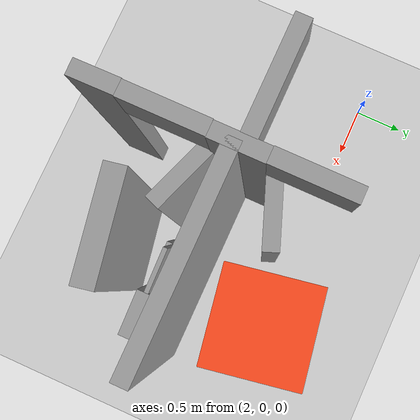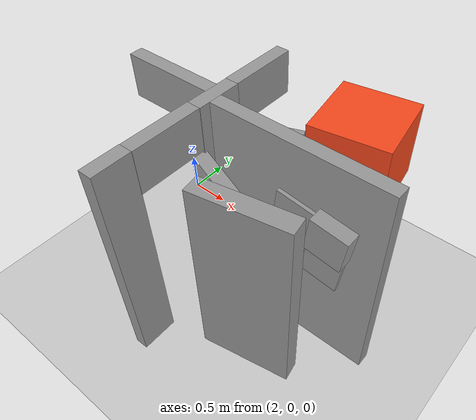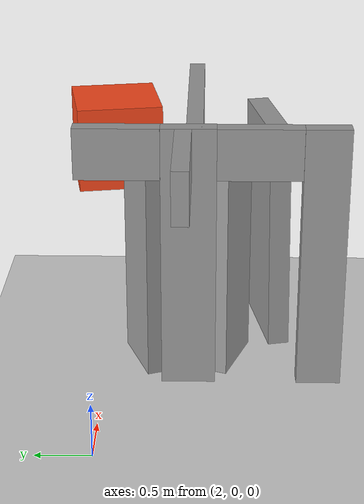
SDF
<sdf version="1.7">
 <world name="default">
  <model name="demo_clean">
   <static>1</static>
   <link name="Wall_21_clone_0_clone_0_clone_clone_clone_clone_clone_clone_clone_clone">
    <gravity>0</gravity>
    <collision name="Wall_21_Collision">
     <geometry><box><size>0.663949 0.15 1.96033</size></box></geometry>
     <pose>0 0 1.25 0 -0 0</pose>
     <surface>
      <friction>
       <ode><mu>1</mu><mu2>1</mu2><fdir1>0 0 0</fdir1><slip1>0</slip1><slip2>0</slip2></ode>
       <torsional>
        <coefficient>1</coefficient>
        <patch_radius>0</patch_radius>
        <surface_radius>0</surface_radius>
        <use_patch_radius>1</use_patch_radius>
        <ode><slip>0</slip></ode>
       </torsional>
      </friction>
      <bounce><restitution_coefficient>0</restitution_coefficient><threshold>1e+06</threshold></bounce>
      <contact>
       <collide_without_contact>0</collide_without_contact>
       <collide_without_contact_bitmask>1</collide_without_contact_bitmask>
       <collide_bitmask>1</collide_bitmask>
       <ode>
        <soft_cfm>0</soft_cfm>
        <soft_erp>0.2</soft_erp>
        <kp>1e+13</kp>
        <kd>1</kd>
        <max_vel>0.01</max_vel>
        <min_depth>0</min_depth>
       </ode>
       <bullet>
        <split_impulse>1</split_impulse>
        <split_impulse_penetration_threshold>-0.01</split_impulse_penetration_threshold>
        <soft_cfm>0</soft_cfm>
        <soft_erp>0.2</soft_erp>
        <kp>1e+13</kp>
        <kd>1</kd>
       </bullet>
      </contact>
     </surface>
    </collision>
    <visual name="Wall_21_Visual">
     <geometry><box><size>0.663949 0.15 1.96033</size></box></geometry>
     <material>
      <script><name>Gazebo/Grey</name><uri>file://media/materials/scripts/gazebo.material</uri></script>
      <ambient>1 1 1 1</ambient>
      <shader type="pixel"><normal_map>__default__</normal_map></shader>
      <diffuse>0.7 0.7 0.7 1</diffuse>
      <specular>0.01 0.01 0.01 1</specular>
      <emissive>0 0 0 1</emissive>
     </material>
     <pose>0 0 1.25 0 -0 0</pose>
    </visual>
    <inertial>
     <inertia><ixx>0</ixx><iyy>0</iyy><izz>0</izz><ixy>0</ixy><ixz>0</ixz><iyz>0</iyz></inertia>
     <mass>1</mass>
    </inertial>
    <pose>3.68306 -1.18793 -0.23202 0 -0 2.79384</pose>
   </link>
   <link name="Wall_21_clone_0_clone_0_clone_clone_clone_clone_clone_clone_clone_clone_clone_clone">
    <gravity>0</gravity>
    <collision name="Wall_21_Collision">
     <geometry><box><size>0.663949 0.15 1.96033</size></box></geometry>
     <pose>0 0 1.25 0 -0 0</pose>
     <surface>
      <friction>
       <ode><mu>1</mu><mu2>1</mu2><fdir1>0 0 0</fdir1><slip1>0</slip1><slip2>0</slip2></ode>
       <torsional>
        <coefficient>1</coefficient>
        <patch_radius>0</patch_radius>
        <surface_radius>0</surface_radius>
        <use_patch_radius>1</use_patch_radius>
        <ode><slip>0</slip></ode>
       </torsional>
      </friction>
      <bounce><restitution_coefficient>0</restitution_coefficient><threshold>1e+06</threshold></bounce>
      <contact>
       <collide_without_contact>0</collide_without_contact>
       <collide_without_contact_bitmask>1</collide_without_contact_bitmask>
       <collide_bitmask>1</collide_bitmask>
       <ode>
        <soft_cfm>0</soft_cfm>
        <soft_erp>0.2</soft_erp>
        <kp>1e+13</kp>
        <kd>1</kd>
        <max_vel>0.01</max_vel>
        <min_depth>0</min_depth>
       </ode>
       <bullet>
        <split_impulse>1</split_impulse>
        <split_impulse_penetration_threshold>-0.01</split_impulse_penetration_threshold>
        <soft_cfm>0</soft_cfm>
        <soft_erp>0.2</soft_erp>
        <kp>1e+13</kp>
        <kd>1</kd>
       </bullet>
      </contact>
     </surface>
    </collision>
    <visual name="Wall_21_Visual">
     <geometry><box><size>0.663949 0.15 1.96033</size></box></geometry>
     <material>
      <script><name>Gazebo/Grey</name><uri>file://media/materials/scripts/gazebo.material</uri></script>
      <ambient>1 1 1 1</ambient>
      <shader type="pixel"><normal_map>__default__</normal_map></shader>
      <diffuse>0.7 0.7 0.7 1</diffuse>
      <specular>0.01 0.01 0.01 1</specular>
      <emissive>0 0 0 1</emissive>
     </material>
     <pose>0 0 1.25 0 -0 0</pose>
    </visual>
    <inertial>
     <inertia><ixx>0</ixx><iyy>0</iyy><izz>0</izz><ixy>0</ixy><ixz>0</ixz><iyz>0</iyz></inertia>
     <mass>1</mass>
    </inertial>
    <pose>3.65792 -0.364043 -0.23202 0 0 -2.77941</pose>
   </link>
   <link name="Wall_28_clone">
    <gravity>0</gravity>
    <collision name="Wall_28_Collision">
     <geometry><box><size>1.03415 0.15 0.476648</size></box></geometry>
     <pose>0 0 1.25 0 -0 0</pose>
     <surface>
      <friction>
       <ode><mu>1</mu><mu2>1</mu2><fdir1>0 0 0</fdir1><slip1>0</slip1><slip2>0</slip2></ode>
       <torsional>
        <coefficient>1</coefficient>
        <patch_radius>0</patch_radius>
        <surface_radius>0</surface_radius>
        <use_patch_radius>1</use_patch_radius>
        <ode><slip>0</slip></ode>
       </torsional>
      </friction>
      <bounce><restitution_coefficient>0</restitution_coefficient><threshold>1e+06</threshold></bounce>
      <contact>
       <collide_without_contact>0</collide_without_contact>
       <collide_without_contact_bitmask>1</collide_without_contact_bitmask>
       <collide_bitmask>1</collide_bitmask>
       <ode>
        <soft_cfm>0</soft_cfm>
        <soft_erp>0.2</soft_erp>
        <kp>1e+13</kp>
        <kd>1</kd>
        <max_vel>0.01</max_vel>
        <min_depth>0</min_depth>
       </ode>
       <bullet>
        <split_impulse>1</split_impulse>
        <split_impulse_penetration_threshold>-0.01</split_impulse_penetration_threshold>
        <soft_cfm>0</soft_cfm>
        <soft_erp>0.2</soft_erp>
        <kp>1e+13</kp>
        <kd>1</kd>
       </bullet>
      </contact>
     </surface>
    </collision>
    <visual name="Wall_28_Visual">
     <geometry><box><size>1.03415 0.15 0.476648</size></box></geometry>
     <material>
      <script><name>Gazebo/Grey</name><uri>file://media/materials/scripts/gazebo.material</uri></script>
      <ambient>1 1 1 1</ambient>
      <shader type="pixel"><normal_map>__default__</normal_map></shader>
      <diffuse>0.7 0.7 0.7 1</diffuse>
      <specular>0.01 0.01 0.01 1</specular>
      <emissive>0 0 0 1</emissive>
     </material>
     <pose>0 0 1.25 0 -0 0</pose>
    </visual>
    <inertial>
     <inertia><ixx>0</ixx><iyy>0</iyy><izz>0</izz><ixy>0</ixy><ixz>0</ixz><iyz>0</iyz></inertia>
     <mass>1</mass>
    </inertial>
    <pose>2.7476 -0.745235 1.01168 0 -0 0</pose>
   </link>
   <link name="Wall_28_clone_clone_clone_clone">
    <gravity>0</gravity>
    <collision name="Wall_28_Collision">
     <geometry><box><size>0.765639 0.15 0.476648</size></box></geometry>
     <pose>0 0 1.25 0 -0 0</pose>
     <surface>
      <friction>
       <ode><mu>1</mu><mu2>1</mu2><fdir1>0 0 0</fdir1><slip1>0</slip1><slip2>0</slip2></ode>
       <torsional>
        <coefficient>1</coefficient>
        <patch_radius>0</patch_radius>
        <surface_radius>0</surface_radius>
        <use_patch_radius>1</use_patch_radius>
        <ode><slip>0</slip></ode>
       </torsional>
      </friction>
      <bounce><restitution_coefficient>0</restitution_coefficient><threshold>1e+06</threshold></bounce>
      <contact>
       <collide_without_contact>0</collide_without_contact>
       <collide_without_contact_bitmask>1</collide_without_contact_bitmask>
       <collide_bitmask>1</collide_bitmask>
       <ode>
        <soft_cfm>0</soft_cfm>
        <soft_erp>0.2</soft_erp>
        <kp>1e+13</kp>
        <kd>1</kd>
        <max_vel>0.01</max_vel>
        <min_depth>0</min_depth>
       </ode>
       <bullet>
        <split_impulse>1</split_impulse>
        <split_impulse_penetration_threshold>-0.01</split_impulse_penetration_threshold>
        <soft_cfm>0</soft_cfm>
        <soft_erp>0.2</soft_erp>
        <kp>1e+13</kp>
        <kd>1</kd>
       </bullet>
      </contact>
     </surface>
    </collision>
    <visual name="Wall_28_Visual">
     <geometry><box><size>0.765639 0.15 0.476648</size></box></geometry>
     <material>
      <script><name>Gazebo/Grey</name><uri>file://media/materials/scripts/gazebo.material</uri></script>
      <ambient>1 1 1 1</ambient>
      <shader type="pixel"><normal_map>__default__</normal_map></shader>
     </material>
     <pose>0 0 1.25 0 -0 0</pose>
    </visual>
    <inertial>
     <inertia><ixx>0</ixx><iyy>0</iyy><izz>0</izz><ixy>0</ixy><ixz>0</ixz><iyz>0</iyz></inertia>
     <mass>1</mass>
    </inertial>
    <pose>3.33099 -1.42343 1.01168 0 0 -1.57004</pose>
   </link>
   <link name="Wall_28_clone_clone_clone_clone_clone">
    <gravity>0</gravity>
    <collision name="Wall_28_Collision">
     <geometry><box><size>0.765639 0.15 0.476648</size></box></geometry>
     <pose>0 0 1.25 0 -0 0</pose>
     <surface>
      <friction>
       <ode><mu>1</mu><mu2>1</mu2><fdir1>0 0 0</fdir1><slip1>0</slip1><slip2>0</slip2></ode>
       <torsional>
        <coefficient>1</coefficient>
        <patch_radius>0</patch_radius>
        <surface_radius>0</surface_radius>
        <use_patch_radius>1</use_patch_radius>
        <ode><slip>0</slip></ode>
       </torsional>
      </friction>
      <bounce><restitution_coefficient>0</restitution_coefficient><threshold>1e+06</threshold></bounce>
      <contact>
       <collide_without_contact>0</collide_without_contact>
       <collide_without_contact_bitmask>1</collide_without_contact_bitmask>
       <collide_bitmask>1</collide_bitmask>
       <ode>
        <soft_cfm>0</soft_cfm>
        <soft_erp>0.2</soft_erp>
        <kp>1e+13</kp>
        <kd>1</kd>
        <max_vel>0.01</max_vel>
        <min_depth>0</min_depth>
       </ode>
       <bullet>
        <split_impulse>1</split_impulse>
        <split_impulse_penetration_threshold>-0.01</split_impulse_penetration_threshold>
        <soft_cfm>0</soft_cfm>
        <soft_erp>0.2</soft_erp>
        <kp>1e+13</kp>
        <kd>1</kd>
       </bullet>
      </contact>
     </surface>
    </collision>
    <visual name="Wall_28_Visual">
     <geometry><box><size>0.765639 0.15 0.476648</size></box></geometry>
     <material>
      <script><name>Gazebo/Grey</name><uri>file://media/materials/scripts/gazebo.material</uri></script>
      <ambient>1 1 1 1</ambient>
      <shader type="pixel"><normal_map>__default__</normal_map></shader>
     </material>
     <pose>0 0 1.25 0 -0 0</pose>
    </visual>
    <inertial>
     <inertia><ixx>0</ixx><iyy>0</iyy><izz>0</izz><ixy>0</ixy><ixz>0</ixz><iyz>0</iyz></inertia>
     <mass>1</mass>
    </inertial>
    <pose>3.33099 -0.160303 1.01168 0 0 -1.57004</pose>
   </link>
   <link name="Wall_30">
    <collision name="Wall_30_Collision">
     <geometry><box><size>0.5 0.15 2.5</size></box></geometry>
     <pose>0 0 1.25 0 -0 0</pose>
     <surface>
      <friction>
       <ode><mu>1</mu><mu2>1</mu2><fdir1>0 0 0</fdir1><slip1>0</slip1><slip2>0</slip2></ode>
       <torsional>
        <coefficient>1</coefficient>
        <patch_radius>0</patch_radius>
        <surface_radius>0</surface_radius>
        <use_patch_radius>1</use_patch_radius>
        <ode><slip>0</slip></ode>
       </torsional>
      </friction>
      <bounce><restitution_coefficient>0</restitution_coefficient><threshold>1e+06</threshold></bounce>
      <contact>
       <collide_without_contact>0</collide_without_contact>
       <collide_without_contact_bitmask>1</collide_without_contact_bitmask>
       <collide_bitmask>1</collide_bitmask>
       <ode>
        <soft_cfm>0</soft_cfm>
        <soft_erp>0.2</soft_erp>
        <kp>1e+13</kp>
        <kd>1</kd>
        <max_vel>0.01</max_vel>
        <min_depth>0</min_depth>
       </ode>
       <bullet>
        <split_impulse>1</split_impulse>
        <split_impulse_penetration_threshold>-0.01</split_impulse_penetration_threshold>
        <soft_cfm>0</soft_cfm>
        <soft_erp>0.2</soft_erp>
        <kp>1e+13</kp>
        <kd>1</kd>
       </bullet>
      </contact>
     </surface>
    </collision>
    <visual name="Wall_30_Visual">
     <geometry><box><size>0.5 0.15 2.5</size></box></geometry>
     <material>
      <script><name>Gazebo/Grey</name><uri>file://media/materials/scripts/gazebo.material</uri></script>
      <ambient>1 1 1 1</ambient>
      <shader type="pixel"><normal_map>default</normal_map></shader>
     </material>
     <pose>0 0 1.25 0 -0 0</pose>
    </visual>
    <pose>3.33603 -0.791518 0 0 0 -1.5708</pose>
   </link>
   <link name="Wall_33">
    <collision name="Wall_33_Collision">
     <geometry><box><size>2 0.15 2.5</size></box></geometry>
     <pose>0 0 1.25 0 -0 0</pose>
     <surface>
      <friction>
       <ode><mu>1</mu><mu2>1</mu2><fdir1>0 0 0</fdir1><slip1>0</slip1><slip2>0</slip2></ode>
       <torsional>
        <coefficient>1</coefficient>
        <patch_radius>0</patch_radius>
        <surface_radius>0</surface_radius>
        <use_patch_radius>1</use_patch_radius>
        <ode><slip>0</slip></ode>
       </torsional>
      </friction>
      <bounce><restitution_coefficient>0</restitution_coefficient><threshold>1e+06</threshold></bounce>
      <contact>
       <collide_without_contact>0</collide_without_contact>
       <collide_without_contact_bitmask>1</collide_without_contact_bitmask>
       <collide_bitmask>1</collide_bitmask>
       <ode>
        <soft_cfm>0</soft_cfm>
        <soft_erp>0.2</soft_erp>
        <kp>1e+13</kp>
        <kd>1</kd>
        <max_vel>0.01</max_vel>
        <min_depth>0</min_depth>
       </ode>
       <bullet>
        <split_impulse>1</split_impulse>
        <split_impulse_penetration_threshold>-0.01</split_impulse_penetration_threshold>
        <soft_cfm>0</soft_cfm>
        <soft_erp>0.2</soft_erp>
        <kp>1e+13</kp>
        <kd>1</kd>
       </bullet>
      </contact>
     </surface>
    </collision>
    <visual name="Wall_33_Visual">
     <geometry><box><size>2 0.15 2.5</size></box></geometry>
     <material>
      <script><name>Gazebo/Grey</name><uri>file://media/materials/scripts/gazebo.material</uri></script>
      <ambient>1 1 1 1</ambient>
      <shader type="pixel"><normal_map>default</normal_map></shader>
     </material>
     <pose>0 0 1.25 0 -0 0</pose>
    </visual>
    <pose>4.32187 -0.846909 0 0 -0 3.14159</pose>
   </link>
   <link name="Wall_51">
    <collision name="Wall_51_Collision">
     <geometry><box><size>0.412102 0.15 2.5</size></box></geometry>
     <pose>0 0 1.25 0 -0 0</pose>
     <surface>
      <friction>
       <ode><mu>1</mu><mu2>1</mu2><fdir1>0 0 0</fdir1><slip1>0</slip1><slip2>0</slip2></ode>
       <torsional>
        <coefficient>1</coefficient>
        <patch_radius>0</patch_radius>
        <surface_radius>0</surface_radius>
        <use_patch_radius>1</use_patch_radius>
        <ode><slip>0</slip></ode>
       </torsional>
      </friction>
      <bounce><restitution_coefficient>0</restitution_coefficient><threshold>1e+06</threshold></bounce>
      <contact>
       <collide_without_contact>0</collide_without_contact>
       <collide_without_contact_bitmask>1</collide_without_contact_bitmask>
       <collide_bitmask>1</collide_bitmask>
       <ode>
        <soft_cfm>0</soft_cfm>
        <soft_erp>0.2</soft_erp>
        <kp>1e+13</kp>
        <kd>1</kd>
        <max_vel>0.01</max_vel>
        <min_depth>0</min_depth>
       </ode>
       <bullet>
        <split_impulse>1</split_impulse>
        <split_impulse_penetration_threshold>-0.01</split_impulse_penetration_threshold>
        <soft_cfm>0</soft_cfm>
        <soft_erp>0.2</soft_erp>
        <kp>1e+13</kp>
        <kd>1</kd>
       </bullet>
      </contact>
     </surface>
    </collision>
    <visual name="Wall_51_Visual">
     <geometry><box><size>0.412102 0.15 2.5</size></box></geometry>
     <material>
      <script><name>Gazebo/Grey</name><uri>file://media/materials/scripts/gazebo.material</uri></script>
      <ambient>1 1 1 1</ambient>
      <shader type="pixel"><normal_map>default</normal_map></shader>
     </material>
     <pose>0 0 1.25 0 -0 0</pose>
    </visual>
    <pose>3.3292 -2.00839 0 0 0 -1.55914</pose>
   </link>
  </model>
  <model name="dyn_box_3">
   <pose>4.51731 -0.07463 2 0 0 -1.40093</pose>
   <static>1</static>
   <allow_auto_disable>0</allow_auto_disable>
   <link name="link">
    <collision name="collision">
     <geometry><box><size>0.8 0.8 0.8</size></box></geometry>
     <max_contacts>20</max_contacts>
    </collision>
    <visual name="visual">
     <geometry><box><size>0.8 0.8 0.8</size></box></geometry>
     <material>
      <ambient>0.972549 0.282353 0.109804 1</ambient>
      <diffuse>0.972549 0.282353 0.109804 1</diffuse>
     </material>
    </visual>
   </link>
  </model>
  <model name="ground_plane">
   <static>1</static>
   <link name="link">
    <collision name="collision">
     <geometry><plane><normal>0 0 1</normal><size>100 100</size></plane></geometry>
     <surface>
      <contact><collide_bitmask>65535</collide_bitmask></contact>
      <friction><ode><mu>100</mu><mu2>50</mu2></ode></friction>
     </surface>
    </collision>
    <visual name="visual">
     <cast_shadows>0</cast_shadows>
     <geometry><plane><normal>0 0 1</normal><size>100 100</size></plane></geometry>
     <material>
      <script><uri>file://media/materials/scripts/gazebo.material</uri><name>Gazebo/Grey</name></script>
     </material>
    </visual>
   </link>
  </model>
  <model name="wall_slate_4">
   <static>1</static>
   <link name="link_0">
    <inertial><mass>1</mass></inertial>
    <gravity>0</gravity>
    <visual name="visual">
     <pose>0 0.2 0.2 0 -0 0</pose>
     <geometry><box><size>0.16 0.4 0.4</size></box></geometry>
     <material>
      <lighting>1</lighting>
      <script><uri>file://media/materials/scripts/gazebo.material</uri><name>Gazebo/Grey</name></script>
      <shader type="pixel"><normal_map>__default__</normal_map></shader>
      <ambient>0.3 0.3 0.3 1</ambient>
      <diffuse>0.7 0.7 0.7 1</diffuse>
      <specular>0.01 0.01 0.01 1</specular>
      <emissive>0 0 0 1</emissive>
     </material>
    </visual>
    <visual name="ModelPreview_0::link_0::visual_1">
     <pose>0 0.2 -0.2 0 -0 0</pose>
     <geometry><box><size>0.04 0.4 0.4</size></box></geometry>
     <material>
      <lighting>1</lighting>
      <script><uri>file://media/materials/scripts/gazebo.material</uri><name>Gazebo/Grey</name></script>
      <shader type="pixel"><normal_map>__default__</normal_map></shader>
      <ambient>0.3 0.3 0.3 1</ambient>
      <diffuse>0.7 0.7 0.7 1</diffuse>
      <specular>0.01 0.01 0.01 1</specular>
      <emissive>0 0 0 1</emissive>
     </material>
    </visual>
    <visual name="ModelPreview_0::link_0::visual_2">
     <pose>0 -0.2 0.2 0 -0 0</pose>
     <geometry><box><size>0.04 0.4 0.4</size></box></geometry>
     <material>
      <lighting>1</lighting>
      <script><uri>file://media/materials/scripts/gazebo.material</uri><name>Gazebo/Grey</name></script>
      <shader type="pixel"><normal_map>__default__</normal_map></shader>
      <ambient>0.3 0.3 0.3 1</ambient>
      <diffuse>0.7 0.7 0.7 1</diffuse>
      <specular>0.01 0.01 0.01 1</specular>
      <emissive>0 0 0 1</emissive>
     </material>
    </visual>
    <visual name="ModelPreview_0::link_0::visual_3">
     <pose>0 -0.2 -0.2 0 -0 0</pose>
     <geometry><box><size>0.16 0.4 0.4</size></box></geometry>
     <material>
      <lighting>1</lighting>
      <script><uri>file://media/materials/scripts/gazebo.material</uri><name>Gazebo/Grey</name></script>
      <shader type="pixel"><normal_map>__default__</normal_map></shader>
      <ambient>0.3 0.3 0.3 1</ambient>
      <diffuse>0.7 0.7 0.7 1</diffuse>
      <specular>0.01 0.01 0.01 1</specular>
      <emissive>0 0 0 1</emissive>
     </material>
    </visual>
    <collision name="collision_2">
     <pose>0 -0.2 0.2 0 -0 0</pose>
     <geometry><box><size>0.04 0.4 0.4</size></box></geometry>
     <surface>
      <friction>
       <ode><mu>1</mu><mu2>1</mu2><fdir1>0 0 0</fdir1><slip1>0</slip1><slip2>0</slip2></ode>
       <torsional>
        <coefficient>1</coefficient>
        <patch_radius>0</patch_radius>
        <surface_radius>0</surface_radius>
        <use_patch_radius>1</use_patch_radius>
        <ode><slip>0</slip></ode>
       </torsional>
      </friction>
      <bounce><restitution_coefficient>0</restitution_coefficient><threshold>1e+06</threshold></bounce>
      <contact>
       <collide_without_contact>0</collide_without_contact>
       <collide_without_contact_bitmask>1</collide_without_contact_bitmask>
       <collide_bitmask>1</collide_bitmask>
       <ode>
        <soft_cfm>0</soft_cfm>
        <soft_erp>0.2</soft_erp>
        <kp>1e+13</kp>
        <kd>1</kd>
        <max_vel>0.01</max_vel>
        <min_depth>0</min_depth>
       </ode>
       <bullet>
        <split_impulse>1</split_impulse>
        <split_impulse_penetration_threshold>-0.01</split_impulse_penetration_threshold>
        <soft_cfm>0</soft_cfm>
        <soft_erp>0.2</soft_erp>
        <kp>1e+13</kp>
        <kd>1</kd>
       </bullet>
      </contact>
     </surface>
    </collision>
    <collision name="collision_1">
     <pose>0 0.2 -0.2 0 -0 0</pose>
     <geometry><box><size>0.04 0.4 0.4</size></box></geometry>
     <surface>
      <friction>
       <ode><mu>1</mu><mu2>1</mu2><fdir1>0 0 0</fdir1><slip1>0</slip1><slip2>0</slip2></ode>
       <torsional>
        <coefficient>1</coefficient>
        <patch_radius>0</patch_radius>
        <surface_radius>0</surface_radius>
        <use_patch_radius>1</use_patch_radius>
        <ode><slip>0</slip></ode>
       </torsional>
      </friction>
      <bounce><restitution_coefficient>0</restitution_coefficient><threshold>1e+06</threshold></bounce>
      <contact>
       <collide_without_contact>0</collide_without_contact>
       <collide_without_contact_bitmask>1</collide_without_contact_bitmask>
       <collide_bitmask>1</collide_bitmask>
       <ode>
        <soft_cfm>0</soft_cfm>
        <soft_erp>0.2</soft_erp>
        <kp>1e+13</kp>
        <kd>1</kd>
        <max_vel>0.01</max_vel>
        <min_depth>0</min_depth>
       </ode>
       <bullet>
        <split_impulse>1</split_impulse>
        <split_impulse_penetration_threshold>-0.01</split_impulse_penetration_threshold>
        <soft_cfm>0</soft_cfm>
        <soft_erp>0.2</soft_erp>
        <kp>1e+13</kp>
        <kd>1</kd>
       </bullet>
      </contact>
     </surface>
    </collision>
    <collision name="collision_4">
     <pose>0 0.2 0.2 0 -0 0</pose>
     <geometry><box><size>0.16 0.4 0.4</size></box></geometry>
     <surface>
      <friction>
       <ode><mu>1</mu><mu2>1</mu2><fdir1>0 0 0</fdir1><slip1>0</slip1><slip2>0</slip2></ode>
       <torsional>
        <coefficient>1</coefficient>
        <patch_radius>0</patch_radius>
        <surface_radius>0</surface_radius>
        <use_patch_radius>1</use_patch_radius>
        <ode><slip>0</slip></ode>
       </torsional>
      </friction>
      <bounce><restitution_coefficient>0</restitution_coefficient><threshold>1e+06</threshold></bounce>
      <contact>
       <collide_without_contact>0</collide_without_contact>
       <collide_without_contact_bitmask>1</collide_without_contact_bitmask>
       <collide_bitmask>1</collide_bitmask>
       <ode>
        <soft_cfm>0</soft_cfm>
        <soft_erp>0.2</soft_erp>
        <kp>1e+13</kp>
        <kd>1</kd>
        <max_vel>0.01</max_vel>
        <min_depth>0</min_depth>
       </ode>
       <bullet>
        <split_impulse>1</split_impulse>
        <split_impulse_penetration_threshold>-0.01</split_impulse_penetration_threshold>
        <soft_cfm>0</soft_cfm>
        <soft_erp>0.2</soft_erp>
        <kp>1e+13</kp>
        <kd>1</kd>
       </bullet>
      </contact>
     </surface>
    </collision>
    <collision name="collision_3">
     <pose>0 -0.2 -0.2 0 -0 0</pose>
     <geometry><box><size>0.16 0.4 0.4</size></box></geometry>
     <surface>
      <friction>
       <ode><mu>1</mu><mu2>1</mu2><fdir1>0 0 0</fdir1><slip1>0</slip1><slip2>0</slip2></ode>
       <torsional>
        <coefficient>1</coefficient>
        <patch_radius>0</patch_radius>
        <surface_radius>0</surface_radius>
        <use_patch_radius>1</use_patch_radius>
        <ode><slip>0</slip></ode>
       </torsional>
      </friction>
      <bounce><restitution_coefficient>0</restitution_coefficient><threshold>1e+06</threshold></bounce>
      <contact>
       <collide_without_contact>0</collide_without_contact>
       <collide_without_contact_bitmask>1</collide_without_contact_bitmask>
       <collide_bitmask>1</collide_bitmask>
       <ode>
        <soft_cfm>0</soft_cfm>
        <soft_erp>0.2</soft_erp>
        <kp>1e+13</kp>
        <kd>1</kd>
        <max_vel>0.01</max_vel>
        <min_depth>0</min_depth>
       </ode>
       <bullet>
        <split_impulse>1</split_impulse>
        <split_impulse_penetration_threshold>-0.01</split_impulse_penetration_threshold>
        <soft_cfm>0</soft_cfm>
        <soft_erp>0.2</soft_erp>
        <kp>1e+13</kp>
        <kd>1</kd>
       </bullet>
      </contact>
     </surface>
    </collision>
   </link>
   <pose>4.62187 -1.02191 1.6 -0.14 0.02 -1.5659</pose>
  </model>
  <model name="large_clutter_1">
   <link name="link_0">
    <inertial>
     <mass>1</mass>
     <inertia><ixx>1</ixx><ixy>0</ixy><ixz>0</ixz><iyy>1</iyy><iyz>0</iyz><izz>1</izz></inertia>
    </inertial>
    <gravity>0</gravity>
    <visual name="visual">
     <geometry><box><size>0.2 1 2.2</size></box></geometry>
     <material>
      <lighting>1</lighting>
      <script><uri>file://media/materials/scripts/gazebo.material</uri><name>Gazebo/Grey</name></script>
      <shader type="pixel"><normal_map>__default__</normal_map></shader>
      <ambient>0.3 0.3 0.3 1</ambient>
      <diffuse>0.7 0.7 0.7 1</diffuse>
      <specular>0.01 0.01 0.01 1</specular>
      <emissive>0 0 0 1</emissive>
     </material>
    </visual>
    <collision name="collision">
     <geometry><box><size>0.2 1 2.2</size></box></geometry>
     <surface>
      <friction>
       <ode><mu>1</mu><mu2>1</mu2><fdir1>0 0 0</fdir1><slip1>0</slip1><slip2>0</slip2></ode>
       <torsional>
        <coefficient>1</coefficient>
        <patch_radius>0</patch_radius>
        <surface_radius>0</surface_radius>
        <use_patch_radius>1</use_patch_radius>
        <ode><slip>0</slip></ode>
       </torsional>
      </friction>
      <bounce><restitution_coefficient>0</restitution_coefficient><threshold>1e+06</threshold></bounce>
      <contact>
       <collide_without_contact>0</collide_without_contact>
       <collide_without_contact_bitmask>1</collide_without_contact_bitmask>
       <collide_bitmask>1</collide_bitmask>
       <ode>
        <soft_cfm>0</soft_cfm>
        <soft_erp>0.2</soft_erp>
        <kp>1e+13</kp>
        <kd>1</kd>
        <max_vel>0.01</max_vel>
        <min_depth>0</min_depth>
       </ode>
       <bullet>
        <split_impulse>1</split_impulse>
        <split_impulse_penetration_threshold>-0.01</split_impulse_penetration_threshold>
        <soft_cfm>0</soft_cfm>
        <soft_erp>0.2</soft_erp>
        <kp>1e+13</kp>
        <kd>1</kd>
       </bullet>
      </contact>
     </surface>
    </collision>
   </link>
   <static>0</static>
   <pose>4.3377 -1.55431 1.19413 0.001028 -0.016841 -1.38781</pose>
  </model>
 </world>
</sdf>
